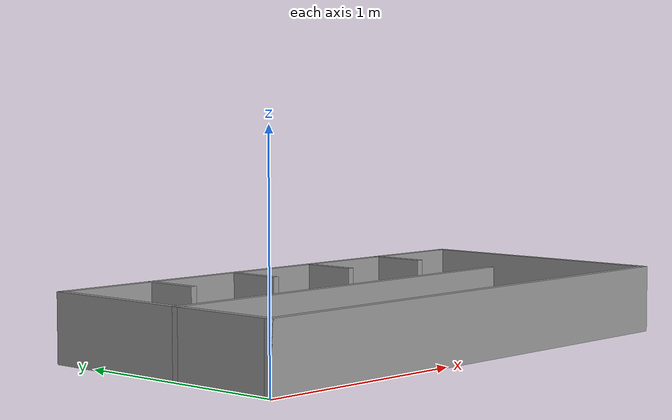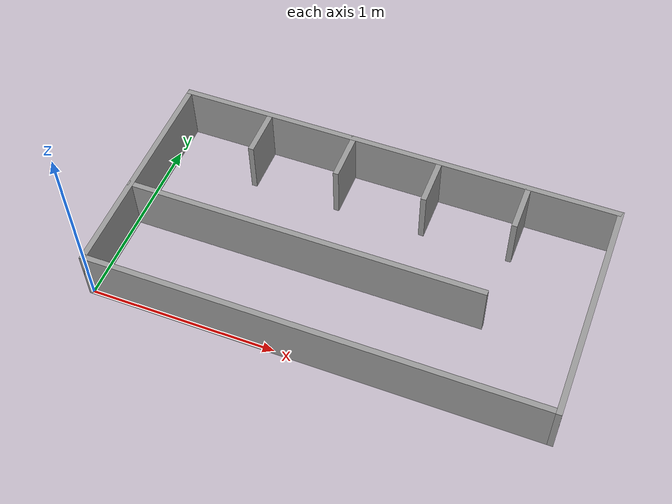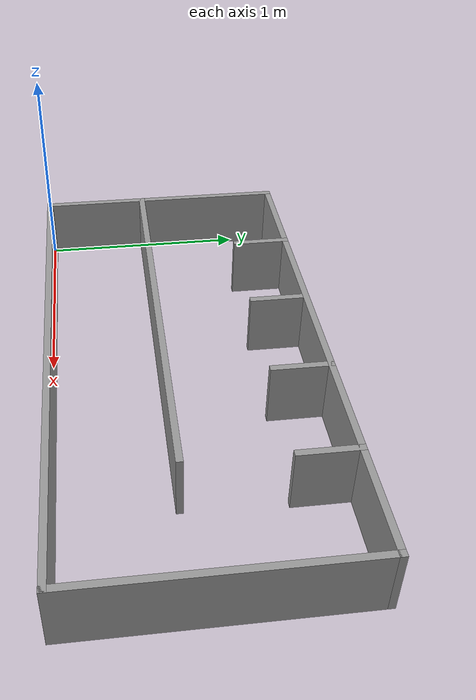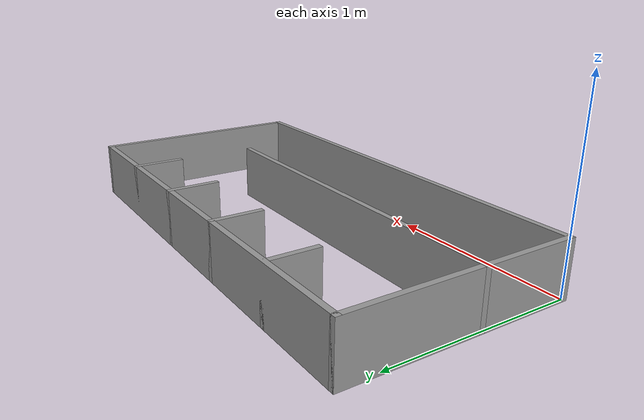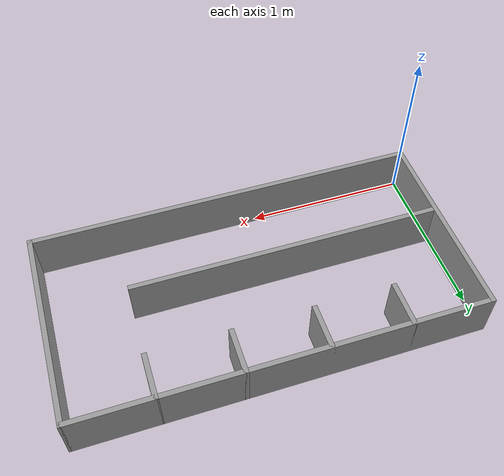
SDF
<?xml version='1.0'?>
<sdf version='1.7'>
  <model name='map_challenge'>
    <pose>1.2 0.6 0 0 -0 0</pose>
    <link name='Wall_0'>
      <collision name='Wall_0_Collision'>
        <geometry>
          <box>
            <size>2.43 0.03 0.3</size>
          </box>
        </geometry>
        <pose>0 0 0.15 0 -0 0</pose>
      </collision>
      <visual name='Wall_0_Visual'>
        <pose>0 0 0.15 0 -0 0</pose>
        <geometry>
          <box>
            <size>2.43 0.03 0.3</size>
          </box>
        </geometry>
        <material>
          <script>
            <uri>file://media/materials/scripts/gazebo.material</uri>
            <name>Gazebo/Grey</name>
          </script>
          <ambient>1 1 1 1</ambient>
        </material>
        <meta>
          <layer>0</layer>
        </meta>
      </visual>
      <pose>-0 -0.6 0 0 -0 0</pose>
    </link>
    <link name='Wall_10'>
      <collision name='Wall_10_Collision'>
        <geometry>
          <box>
            <size>1.93 0.03 0.3</size>
          </box>
        </geometry>
        <pose>0 0 0.15 0 -0 0</pose>
      </collision>
      <visual name='Wall_10_Visual'>
        <pose>0 0 0.15 0 -0 0</pose>
        <geometry>
          <box>
            <size>1.93 0.03 0.3</size>
          </box>
        </geometry>
        <material>
          <script>
            <uri>file://media/materials/scripts/gazebo.material</uri>
            <name>Gazebo/Grey</name>
          </script>
          <ambient>1 1 1 1</ambient>
        </material>
        <meta>
          <layer>0</layer>
        </meta>
      </visual>
      <pose>-0.25 -0.1 0 0 -0 0</pose>
    </link>
    <link name='Wall_12'>
      <collision name='Wall_12_Collision'>
        <geometry>
          <box>
            <size>0.28 0.03 0.3</size>
          </box>
        </geometry>
        <pose>0 0 0.15 0 -0 0</pose>
      </collision>
      <visual name='Wall_12_Visual'>
        <pose>0 0 0.15 0 -0 0</pose>
        <geometry>
          <box>
            <size>0.28 0.03 0.3</size>
          </box>
        </geometry>
        <material>
          <script>
            <uri>file://media/materials/scripts/gazebo.material</uri>
            <name>Gazebo/Grey</name>
          </script>
          <ambient>1 1 1 1</ambient>
        </material>
        <meta>
          <layer>0</layer>
        </meta>
      </visual>
      <pose>-0.72 0.475 0 0 -0 -1.5708</pose>
    </link>
    <link name='Wall_14'>
      <collision name='Wall_14_Collision'>
        <geometry>
          <box>
            <size>0.28 0.03 0.3</size>
          </box>
        </geometry>
        <pose>0 0 0.15 0 -0 0</pose>
      </collision>
      <visual name='Wall_14_Visual'>
        <pose>0 0 0.15 0 -0 0</pose>
        <geometry>
          <box>
            <size>0.28 0.03 0.3</size>
          </box>
        </geometry>
        <material>
          <script>
            <uri>file://media/materials/scripts/gazebo.material</uri>
            <name>Gazebo/Grey</name>
          </script>
          <ambient>1 1 1 1</ambient>
        </material>
        <meta>
          <layer>0</layer>
        </meta>
      </visual>
      <pose>-0.24 0.475 0 0 -0 -1.5708</pose>
    </link>
    <link name='Wall_16'>
      <collision name='Wall_16_Collision'>
        <geometry>
          <box>
            <size>0.28 0.03 0.3</size>
          </box>
        </geometry>
        <pose>0 0 0.15 0 -0 0</pose>
      </collision>
      <visual name='Wall_16_Visual'>
        <pose>0 0 0.15 0 -0 0</pose>
        <geometry>
          <box>
            <size>0.28 0.03 0.3</size>
          </box>
        </geometry>
        <material>
          <script>
            <uri>file://media/materials/scripts/gazebo.material</uri>
            <name>Gazebo/Grey</name>
          </script>
          <ambient>1 1 1 1</ambient>
        </material>
        <meta>
          <layer>0</layer>
        </meta>
      </visual>
      <pose>0.24 0.475 0 0 -0 -1.5708</pose>
    </link>
    <link name='Wall_18'>
      <collision name='Wall_18_Collision'>
        <geometry>
          <box>
            <size>0.28 0.03 0.3</size>
          </box>
        </geometry>
        <pose>0 0 0.15 0 -0 0</pose>
      </collision>
      <visual name='Wall_18_Visual'>
        <pose>0 0 0.15 0 -0 0</pose>
        <geometry>
          <box>
            <size>0.28 0.03 0.3</size>
          </box>
        </geometry>
        <material>
          <script>
            <uri>file://media/materials/scripts/gazebo.material</uri>
            <name>Gazebo/Grey</name>
          </script>
          <ambient>1 1 1 1</ambient>
        </material>
        <meta>
          <layer>0</layer>
        </meta>
      </visual>
      <pose>0.72 0.475 0 0 -0 -1.5708</pose>
    </link>
    <link name='Wall_2'>
      <collision name='Wall_2_Collision'>
        <geometry>
          <box>
            <size>1.23 0.03 0.3</size>
          </box>
        </geometry>
        <pose>0 0 0.15 0 -0 0</pose>
      </collision>
      <visual name='Wall_2_Visual'>
        <pose>0 0 0.15 0 -0 0</pose>
        <geometry>
          <box>
            <size>1.23 0.03 0.3</size>
          </box>
        </geometry>
        <material>
          <script>
            <uri>file://media/materials/scripts/gazebo.material</uri>
            <name>Gazebo/Grey</name>
          </script>
          <ambient>1 1 1 1</ambient>
        </material>
        <meta>
          <layer>0</layer>
        </meta>
      </visual>
      <pose>-1.2 -0 0 0 -0 1.5708</pose>
    </link>
    <link name='Wall_4'>
      <collision name='Wall_4_Collision'>
        <geometry>
          <box>
            <size>2.43 0.03 0.3</size>
          </box>
        </geometry>
        <pose>0 0 0.15 0 -0 0</pose>
      </collision>
      <visual name='Wall_4_Visual'>
        <pose>0 0 0.15 0 -0 0</pose>
        <geometry>
          <box>
            <size>2.43 0.03 0.3</size>
          </box>
        </geometry>
        <material>
          <script>
            <uri>file://media/materials/scripts/gazebo.material</uri>
            <name>Gazebo/Grey</name>
          </script>
          <ambient>1 1 1 1</ambient>
        </material>
        <meta>
          <layer>0</layer>
        </meta>
      </visual>
      <pose>-0 -0.6 0 0 -0 0</pose>
    </link>
    <link name='Wall_6'>
      <collision name='Wall_6_Collision'>
        <geometry>
          <box>
            <size>1.23 0.03 0.3</size>
          </box>
        </geometry>
        <pose>0 0 0.15 0 -0 0</pose>
      </collision>
      <visual name='Wall_6_Visual'>
        <pose>0 0 0.15 0 -0 0</pose>
        <geometry>
          <box>
            <size>1.23 0.03 0.3</size>
          </box>
        </geometry>
        <material>
          <script>
            <uri>file://media/materials/scripts/gazebo.material</uri>
            <name>Gazebo/Grey</name>
          </script>
          <ambient>1 1 1 1</ambient>
        </material>
        <meta>
          <layer>0</layer>
        </meta>
      </visual>
      <pose>1.2 -0 0 0 -0 1.5708</pose>
    </link>
    <link name='Wall_8'>
      <collision name='Wall_8_Collision'>
        <geometry>
          <box>
            <size>2.43 0.03 0.3</size>
          </box>
        </geometry>
        <pose>0 0 0.15 0 -0 0</pose>
      </collision>
      <visual name='Wall_8_Visual'>
        <pose>0 0 0.15 0 -0 0</pose>
        <geometry>
          <box>
            <size>2.43 0.03 0.3</size>
          </box>
        </geometry>
        <material>
          <script>
            <uri>file://media/materials/scripts/gazebo.material</uri>
            <name>Gazebo/Grey</name>
          </script>
          <ambient>1 1 1 1</ambient>
        </material>
        <meta>
          <layer>0</layer>
        </meta>
      </visual>
      <pose>-0 0.6 0 0 -0 0</pose>
    </link>
    <static>1</static>
  </model>
</sdf>
